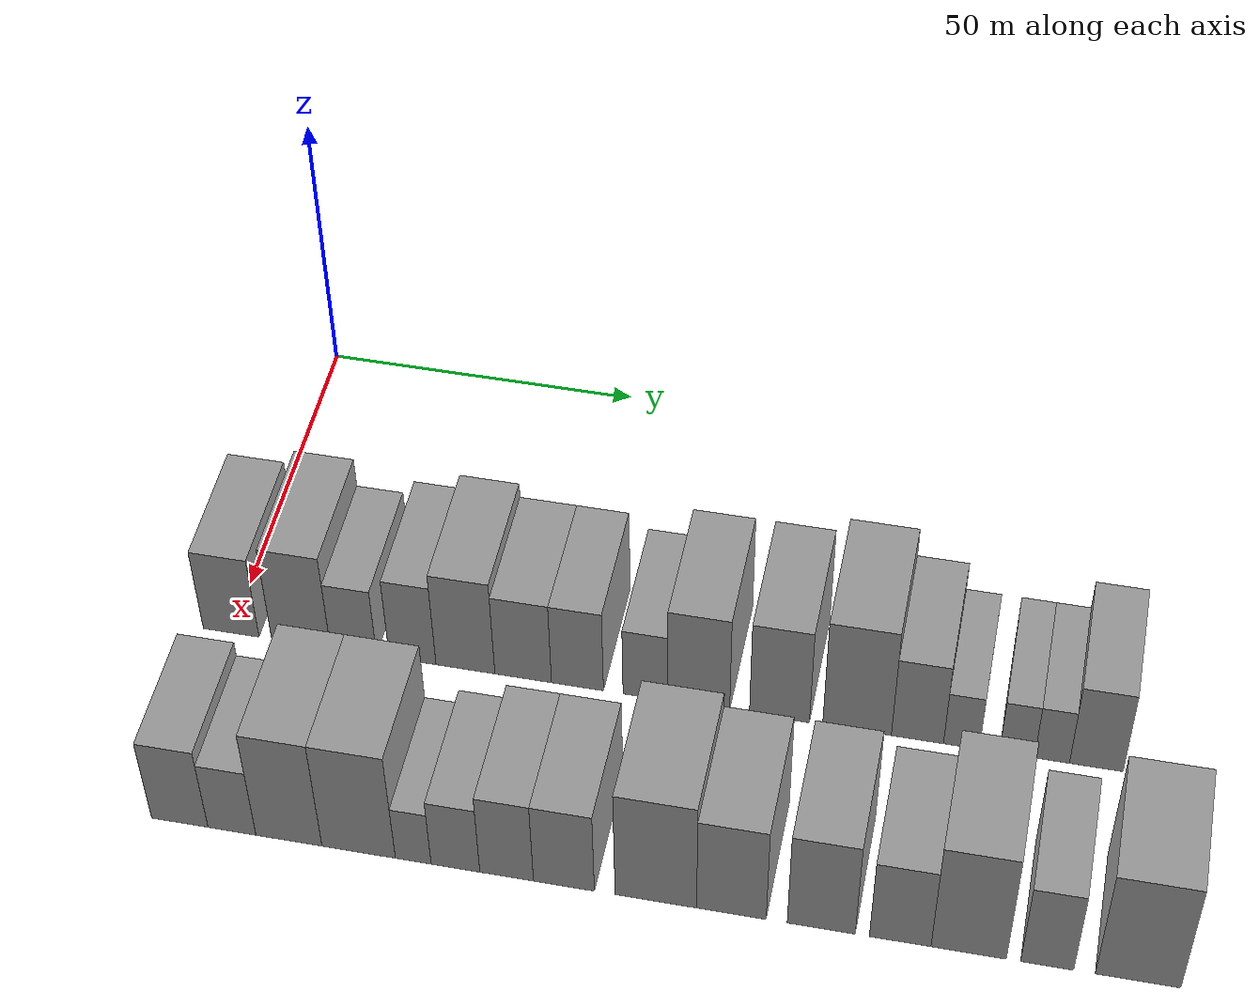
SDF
<sdf version="1.6">
 <world name="default">
  <model name="building_32">
   <static>1</static>
   <pose>50.0000 -0.1059 0 0.000000 0.000000 0.000000</pose>
   <link name="link">
    <pose>0 0 9.00 0 0 0</pose>
    <collision name="collision"><geometry><box><size>20.0000 8.8263 18.0000</size></box></geometry></collision>
    <visual name="visual">
     <cast_shadows>0</cast_shadows>
     <geometry><box><size>20.0000 8.8263 18.0000</size></box></geometry>
     <material>
      <script>
       <uri>model://grey_wall/materials/scripts</uri>
       <uri>model://grey_wall/materials/textures</uri>
       <name>vrc/grey_wall</name>
      </script>
     </material>
    </visual>
   </link>
  </model>
  <model name="building_33">
   <static>1</static>
   <pose>50.0000 10.9382 0 0.000000 0.000000 0.000000</pose>
   <link name="link">
    <pose>0 0 10.50 0 0 0</pose>
    <collision name="collision"><geometry><box><size>20.0000 9.2619 21.0000</size></box></geometry></collision>
    <visual name="visual">
     <cast_shadows>0</cast_shadows>
     <geometry><box><size>20.0000 9.2619 21.0000</size></box></geometry>
     <material>
      <script>
       <uri>model://grey_wall/materials/scripts</uri>
       <uri>model://grey_wall/materials/textures</uri>
       <name>vrc/grey_wall</name>
      </script>
     </material>
    </visual>
   </link>
  </model>
  <model name="building_34">
   <static>1</static>
   <pose>50.0000 19.1914 0 0.000000 0.000000 0.000000</pose>
   <link name="link">
    <pose>0 0 7.50 0 0 0</pose>
    <collision name="collision"><geometry><box><size>20.0000 7.2445 15.0000</size></box></geometry></collision>
    <visual name="visual">
     <cast_shadows>0</cast_shadows>
     <geometry><box><size>20.0000 7.2445 15.0000</size></box></geometry>
     <material>
      <script>
       <uri>model://grey_wall/materials/scripts</uri>
       <uri>model://grey_wall/materials/textures</uri>
       <name>vrc/grey_wall</name>
      </script>
     </material>
    </visual>
   </link>
  </model>
  <model name="building_35">
   <static>1</static>
   <pose>50.0000 28.4466 0 0.000000 0.000000 0.000000</pose>
   <link name="link">
    <pose>0 0 9.00 0 0 0</pose>
    <collision name="collision"><geometry><box><size>20.0000 7.2659 18.0000</size></box></geometry></collision>
    <visual name="visual">
     <cast_shadows>0</cast_shadows>
     <geometry><box><size>20.0000 7.2659 18.0000</size></box></geometry>
     <material>
      <script>
       <uri>model://grey_wall/materials/scripts</uri>
       <uri>model://grey_wall/materials/textures</uri>
       <name>vrc/grey_wall</name>
      </script>
     </material>
    </visual>
   </link>
  </model>
  <model name="building_36">
   <static>1</static>
   <pose>50.0000 36.6467 0 0.000000 0.000000 0.000000</pose>
   <link name="link">
    <pose>0 0 10.50 0 0 0</pose>
    <collision name="collision"><geometry><box><size>20.0000 9.1343 21.0000</size></box></geometry></collision>
    <visual name="visual">
     <cast_shadows>0</cast_shadows>
     <geometry><box><size>20.0000 9.1343 21.0000</size></box></geometry>
     <material>
      <script>
       <uri>model://grey_wall/materials/scripts</uri>
       <uri>model://grey_wall/materials/textures</uri>
       <name>vrc/grey_wall</name>
      </script>
     </material>
    </visual>
   </link>
  </model>
  <model name="building_37">
   <static>1</static>
   <pose>50.0000 45.5861 0 0.000000 0.000000 0.000000</pose>
   <link name="link">
    <pose>0 0 9.00 0 0 0</pose>
    <collision name="collision"><geometry><box><size>20.0000 8.7445 18.0000</size></box></geometry></collision>
    <visual name="visual">
     <cast_shadows>0</cast_shadows>
     <geometry><box><size>20.0000 8.7445 18.0000</size></box></geometry>
     <material>
      <script>
       <uri>model://grey_wall/materials/scripts</uri>
       <uri>model://grey_wall/materials/textures</uri>
       <name>vrc/grey_wall</name>
      </script>
     </material>
    </visual>
   </link>
  </model>
  <model name="building_38">
   <static>1</static>
   <pose>50.0000 53.9512 0 0.000000 0.000000 0.000000</pose>
   <link name="link">
    <pose>0 0 9.00 0 0 0</pose>
    <collision name="collision"><geometry><box><size>20.0000 7.9858 18.0000</size></box></geometry></collision>
    <visual name="visual">
     <cast_shadows>0</cast_shadows>
     <geometry><box><size>20.0000 7.9858 18.0000</size></box></geometry>
     <material>
      <script>
       <uri>model://grey_wall/materials/scripts</uri>
       <uri>model://grey_wall/materials/textures</uri>
       <name>vrc/grey_wall</name>
      </script>
     </material>
    </visual>
   </link>
  </model>
  <model name="building_39">
   <static>1</static>
   <pose>50.0000 64.3658 0 0.000000 0.000000 0.000000</pose>
   <link name="link">
    <pose>0 0 7.50 0 0 0</pose>
    <collision name="collision"><geometry><box><size>20.0000 6.8434 15.0000</size></box></geometry></collision>
    <visual name="visual">
     <cast_shadows>0</cast_shadows>
     <geometry><box><size>20.0000 6.8434 15.0000</size></box></geometry>
     <material>
      <script>
       <uri>model://grey_wall/materials/scripts</uri>
       <uri>model://grey_wall/materials/textures</uri>
       <name>vrc/grey_wall</name>
      </script>
     </material>
    </visual>
   </link>
  </model>
  <model name="building_40">
   <static>1</static>
   <pose>50.0000 72.4730 0 0.000000 0.000000 0.000000</pose>
   <link name="link">
    <pose>0 0 10.50 0 0 0</pose>
    <collision name="collision"><geometry><box><size>20.0000 9.3710 21.0000</size></box></geometry></collision>
    <visual name="visual">
     <cast_shadows>0</cast_shadows>
     <geometry><box><size>20.0000 9.3710 21.0000</size></box></geometry>
     <material>
      <script>
       <uri>model://grey_wall/materials/scripts</uri>
       <uri>model://grey_wall/materials/textures</uri>
       <name>vrc/grey_wall</name>
      </script>
     </material>
    </visual>
   </link>
  </model>
  <model name="building_41">
   <static>1</static>
   <pose>50.0000 84.6724 0 0.000000 0.000000 0.000000</pose>
   <link name="link">
    <pose>0 0 10.50 0 0 0</pose>
    <collision name="collision"><geometry><box><size>20.0000 9.0277 21.0000</size></box></geometry></collision>
    <visual name="visual">
     <cast_shadows>0</cast_shadows>
     <geometry><box><size>20.0000 9.0277 21.0000</size></box></geometry>
     <material>
      <script>
       <uri>model://grey_wall/materials/scripts</uri>
       <uri>model://grey_wall/materials/textures</uri>
       <name>vrc/grey_wall</name>
      </script>
     </material>
    </visual>
   </link>
  </model>
  <model name="building_42">
   <static>1</static>
   <pose>50.0000 96.3206 0 0.000000 0.000000 0.000000</pose>
   <link name="link">
    <pose>0 0 12.00 0 0 0</pose>
    <collision name="collision"><geometry><box><size>20.0000 10.2688 24.0000</size></box></geometry></collision>
    <visual name="visual">
     <cast_shadows>0</cast_shadows>
     <geometry><box><size>20.0000 10.2688 24.0000</size></box></geometry>
     <material>
      <script>
       <uri>model://grey_wall/materials/scripts</uri>
       <uri>model://grey_wall/materials/textures</uri>
       <name>vrc/grey_wall</name>
      </script>
     </material>
    </visual>
   </link>
  </model>
  <model name="building_43">
   <static>1</static>
   <pose>50.0000 105.3355 0 0.000000 0.000000 0.000000</pose>
   <link name="link">
    <pose>0 0 9.00 0 0 0</pose>
    <collision name="collision"><geometry><box><size>20.0000 7.7611 18.0000</size></box></geometry></collision>
    <visual name="visual">
     <cast_shadows>0</cast_shadows>
     <geometry><box><size>20.0000 7.7611 18.0000</size></box></geometry>
     <material>
      <script>
       <uri>model://grey_wall/materials/scripts</uri>
       <uri>model://grey_wall/materials/textures</uri>
       <name>vrc/grey_wall</name>
      </script>
     </material>
    </visual>
   </link>
  </model>
  <model name="building_44">
   <static>1</static>
   <pose>50.0000 111.8671 0 0.000000 0.000000 0.000000</pose>
   <link name="link">
    <pose>0 0 6.00 0 0 0</pose>
    <collision name="collision"><geometry><box><size>20.0000 5.3020 12.0000</size></box></geometry></collision>
    <visual name="visual">
     <cast_shadows>0</cast_shadows>
     <geometry><box><size>20.0000 5.3020 12.0000</size></box></geometry>
     <material>
      <script>
       <uri>model://grey_wall/materials/scripts</uri>
       <uri>model://grey_wall/materials/textures</uri>
       <name>vrc/grey_wall</name>
      </script>
     </material>
    </visual>
   </link>
  </model>
  <model name="building_45">
   <static>1</static>
   <pose>50.0000 120.0955 0 0.000000 0.000000 0.000000</pose>
   <link name="link">
    <pose>0 0 6.00 0 0 0</pose>
    <collision name="collision"><geometry><box><size>20.0000 5.1548 12.0000</size></box></geometry></collision>
    <visual name="visual">
     <cast_shadows>0</cast_shadows>
     <geometry><box><size>20.0000 5.1548 12.0000</size></box></geometry>
     <material>
      <script>
       <uri>model://grey_wall/materials/scripts</uri>
       <uri>model://grey_wall/materials/textures</uri>
       <name>vrc/grey_wall</name>
      </script>
     </material>
    </visual>
   </link>
  </model>
  <model name="building_46">
   <static>1</static>
   <pose>50.0000 125.2434 0 0.000000 0.000000 0.000000</pose>
   <link name="link">
    <pose>0 0 6.00 0 0 0</pose>
    <collision name="collision"><geometry><box><size>20.0000 5.1410 12.0000</size></box></geometry></collision>
    <visual name="visual">
     <cast_shadows>0</cast_shadows>
     <geometry><box><size>20.0000 5.1410 12.0000</size></box></geometry>
     <material>
      <script>
       <uri>model://grey_wall/materials/scripts</uri>
       <uri>model://grey_wall/materials/textures</uri>
       <name>vrc/grey_wall</name>
      </script>
     </material>
    </visual>
   </link>
  </model>
  <model name="building_47">
   <static>1</static>
   <pose>50.0000 131.7427 0 0.000000 0.000000 0.000000</pose>
   <link name="link">
    <pose>0 0 9.00 0 0 0</pose>
    <collision name="collision"><geometry><box><size>20.0000 7.8575 18.0000</size></box></geometry></collision>
    <visual name="visual">
     <cast_shadows>0</cast_shadows>
     <geometry><box><size>20.0000 7.8575 18.0000</size></box></geometry>
     <material>
      <script>
       <uri>model://grey_wall/materials/scripts</uri>
       <uri>model://grey_wall/materials/textures</uri>
       <name>vrc/grey_wall</name>
      </script>
     </material>
    </visual>
   </link>
  </model>
  <model name="building_96">
   <static>1</static>
   <pose>85.0000 2.8627 0 0.000000 0.000000 0.000000</pose>
   <link name="link">
    <pose>0 0 9.00 0 0 0</pose>
    <collision name="collision"><geometry><box><size>20.0000 8.4858 18.0000</size></box></geometry></collision>
    <visual name="visual">
     <cast_shadows>0</cast_shadows>
     <geometry><box><size>20.0000 8.4858 18.0000</size></box></geometry>
     <material>
      <script>
       <uri>model://grey_wall/materials/scripts</uri>
       <uri>model://grey_wall/materials/textures</uri>
       <name>vrc/grey_wall</name>
      </script>
     </material>
    </visual>
   </link>
  </model>
  <model name="building_97">
   <static>1</static>
   <pose>85.0000 10.6916 0 0.000000 0.000000 0.000000</pose>
   <link name="link">
    <pose>0 0 7.50 0 0 0</pose>
    <collision name="collision"><geometry><box><size>20.0000 7.1720 15.0000</size></box></geometry></collision>
    <visual name="visual">
     <cast_shadows>0</cast_shadows>
     <geometry><box><size>20.0000 7.1720 15.0000</size></box></geometry>
     <material>
      <script>
       <uri>model://grey_wall/materials/scripts</uri>
       <uri>model://grey_wall/materials/textures</uri>
       <name>vrc/grey_wall</name>
      </script>
     </material>
    </visual>
   </link>
  </model>
  <model name="building_98">
   <static>1</static>
   <pose>85.0000 19.1859 0 0.000000 0.000000 0.000000</pose>
   <link name="link">
    <pose>0 0 12.00 0 0 0</pose>
    <collision name="collision"><geometry><box><size>20.0000 9.8165 24.0000</size></box></geometry></collision>
    <visual name="visual">
     <cast_shadows>0</cast_shadows>
     <geometry><box><size>20.0000 9.8165 24.0000</size></box></geometry>
     <material>
      <script>
       <uri>model://grey_wall/materials/scripts</uri>
       <uri>model://grey_wall/materials/textures</uri>
       <name>vrc/grey_wall</name>
      </script>
     </material>
    </visual>
   </link>
  </model>
  <model name="building_99">
   <static>1</static>
   <pose>85.0000 29.5244 0 0.000000 0.000000 0.000000</pose>
   <link name="link">
    <pose>0 0 12.00 0 0 0</pose>
    <collision name="collision"><geometry><box><size>20.0000 10.8606 24.0000</size></box></geometry></collision>
    <visual name="visual">
     <cast_shadows>0</cast_shadows>
     <geometry><box><size>20.0000 10.8606 24.0000</size></box></geometry>
     <material>
      <script>
       <uri>model://grey_wall/materials/scripts</uri>
       <uri>model://grey_wall/materials/textures</uri>
       <name>vrc/grey_wall</name>
      </script>
     </material>
    </visual>
   </link>
  </model>
  <model name="building_100">
   <static>1</static>
   <pose>85.0000 37.5834 0 0.000000 0.000000 0.000000</pose>
   <link name="link">
    <pose>0 0 6.00 0 0 0</pose>
    <collision name="collision"><geometry><box><size>20.0000 5.2576 12.0000</size></box></geometry></collision>
    <visual name="visual">
     <cast_shadows>0</cast_shadows>
     <geometry><box><size>20.0000 5.2576 12.0000</size></box></geometry>
     <material>
      <script>
       <uri>model://grey_wall/materials/scripts</uri>
       <uri>model://grey_wall/materials/textures</uri>
       <name>vrc/grey_wall</name>
      </script>
     </material>
    </visual>
   </link>
  </model>
  <model name="building_101">
   <static>1</static>
   <pose>85.0000 43.7744 0 0.000000 0.000000 0.000000</pose>
   <link name="link">
    <pose>0 0 7.50 0 0 0</pose>
    <collision name="collision"><geometry><box><size>20.0000 7.1243 15.0000</size></box></geometry></collision>
    <visual name="visual">
     <cast_shadows>0</cast_shadows>
     <geometry><box><size>20.0000 7.1243 15.0000</size></box></geometry>
     <material>
      <script>
       <uri>model://grey_wall/materials/scripts</uri>
       <uri>model://grey_wall/materials/textures</uri>
       <name>vrc/grey_wall</name>
      </script>
     </material>
    </visual>
   </link>
  </model>
  <model name="building_102">
   <static>1</static>
   <pose>85.0000 51.2470 0 0.000000 0.000000 0.000000</pose>
   <link name="link">
    <pose>0 0 9.00 0 0 0</pose>
    <collision name="collision"><geometry><box><size>20.0000 7.8208 18.0000</size></box></geometry></collision>
    <visual name="visual">
     <cast_shadows>0</cast_shadows>
     <geometry><box><size>20.0000 7.8208 18.0000</size></box></geometry>
     <material>
      <script>
       <uri>model://grey_wall/materials/scripts</uri>
       <uri>model://grey_wall/materials/textures</uri>
       <name>vrc/grey_wall</name>
      </script>
     </material>
    </visual>
   </link>
  </model>
  <model name="building_103">
   <static>1</static>
   <pose>85.0000 59.5726 0 0.000000 0.000000 0.000000</pose>
   <link name="link">
    <pose>0 0 9.00 0 0 0</pose>
    <collision name="collision"><geometry><box><size>20.0000 8.8305 18.0000</size></box></geometry></collision>
    <visual name="visual">
     <cast_shadows>0</cast_shadows>
     <geometry><box><size>20.0000 8.8305 18.0000</size></box></geometry>
     <material>
      <script>
       <uri>model://grey_wall/materials/scripts</uri>
       <uri>model://grey_wall/materials/textures</uri>
       <name>vrc/grey_wall</name>
      </script>
     </material>
    </visual>
   </link>
  </model>
  <model name="building_104">
   <static>1</static>
   <pose>85.0000 72.8417 0 0.000000 0.000000 0.000000</pose>
   <link name="link">
    <pose>0 0 12.00 0 0 0</pose>
    <collision name="collision"><geometry><box><size>20.0000 11.7076 24.0000</size></box></geometry></collision>
    <visual name="visual">
     <cast_shadows>0</cast_shadows>
     <geometry><box><size>20.0000 11.7076 24.0000</size></box></geometry>
     <material>
      <script>
       <uri>model://grey_wall/materials/scripts</uri>
       <uri>model://grey_wall/materials/textures</uri>
       <name>vrc/grey_wall</name>
      </script>
     </material>
    </visual>
   </link>
  </model>
  <model name="building_105">
   <static>1</static>
   <pose>85.0000 83.6603 0 0.000000 0.000000 0.000000</pose>
   <link name="link">
    <pose>0 0 10.50 0 0 0</pose>
    <collision name="collision"><geometry><box><size>20.0000 9.9297 21.0000</size></box></geometry></collision>
    <visual name="visual">
     <cast_shadows>0</cast_shadows>
     <geometry><box><size>20.0000 9.9297 21.0000</size></box></geometry>
     <material>
      <script>
       <uri>model://grey_wall/materials/scripts</uri>
       <uri>model://grey_wall/materials/textures</uri>
       <name>vrc/grey_wall</name>
      </script>
     </material>
    </visual>
   </link>
  </model>
  <model name="building_106">
   <static>1</static>
   <pose>85.0000 96.4354 0 0.000000 0.000000 0.000000</pose>
   <link name="link">
    <pose>0 0 10.50 0 0 0</pose>
    <collision name="collision"><geometry><box><size>20.0000 9.6205 21.0000</size></box></geometry></collision>
    <visual name="visual">
     <cast_shadows>0</cast_shadows>
     <geometry><box><size>20.0000 9.6205 21.0000</size></box></geometry>
     <material>
      <script>
       <uri>model://grey_wall/materials/scripts</uri>
       <uri>model://grey_wall/materials/textures</uri>
       <name>vrc/grey_wall</name>
      </script>
     </material>
    </visual>
   </link>
  </model>
  <model name="building_107">
   <static>1</static>
   <pose>85.0000 107.5738 0 0.000000 0.000000 0.000000</pose>
   <link name="link">
    <pose>0 0 9.00 0 0 0</pose>
    <collision name="collision"><geometry><box><size>20.0000 8.6563 18.0000</size></box></geometry></collision>
    <visual name="visual">
     <cast_shadows>0</cast_shadows>
     <geometry><box><size>20.0000 8.6563 18.0000</size></box></geometry>
     <material>
      <script>
       <uri>model://grey_wall/materials/scripts</uri>
       <uri>model://grey_wall/materials/textures</uri>
       <name>vrc/grey_wall</name>
      </script>
     </material>
    </visual>
   </link>
  </model>
  <model name="building_108">
   <static>1</static>
   <pose>85.0000 117.1630 0 0.000000 0.000000 0.000000</pose>
   <link name="link">
    <pose>0 0 12.00 0 0 0</pose>
    <collision name="collision"><geometry><box><size>20.0000 10.5221 24.0000</size></box></geometry></collision>
    <visual name="visual">
     <cast_shadows>0</cast_shadows>
     <geometry><box><size>20.0000 10.5221 24.0000</size></box></geometry>
     <material>
      <script>
       <uri>model://grey_wall/materials/scripts</uri>
       <uri>model://grey_wall/materials/textures</uri>
       <name>vrc/grey_wall</name>
      </script>
     </material>
    </visual>
   </link>
  </model>
  <model name="building_109">
   <static>1</static>
   <pose>85.0000 128.0937 0 0.000000 0.000000 0.000000</pose>
   <link name="link">
    <pose>0 0 9.00 0 0 0</pose>
    <collision name="collision"><geometry><box><size>20.0000 7.3392 18.0000</size></box></geometry></collision>
    <visual name="visual">
     <cast_shadows>0</cast_shadows>
     <geometry><box><size>20.0000 7.3392 18.0000</size></box></geometry>
     <material>
      <script>
       <uri>model://grey_wall/materials/scripts</uri>
       <uri>model://grey_wall/materials/textures</uri>
       <name>vrc/grey_wall</name>
      </script>
     </material>
    </visual>
   </link>
  </model>
  <model name="building_110">
   <static>1</static>
   <pose>85.0000 140.6455 0 0.000000 0.000000 0.000000</pose>
   <link name="link">
    <pose>0 0 12.00 0 0 0</pose>
    <collision name="collision"><geometry><box><size>20.0000 11.7644 24.0000</size></box></geometry></collision>
    <visual name="visual">
     <cast_shadows>0</cast_shadows>
     <geometry><box><size>20.0000 11.7644 24.0000</size></box></geometry>
     <material>
      <script>
       <uri>model://grey_wall/materials/scripts</uri>
       <uri>model://grey_wall/materials/textures</uri>
       <name>vrc/grey_wall</name>
      </script>
     </material>
    </visual>
   </link>
  </model>
 </world>
</sdf>
